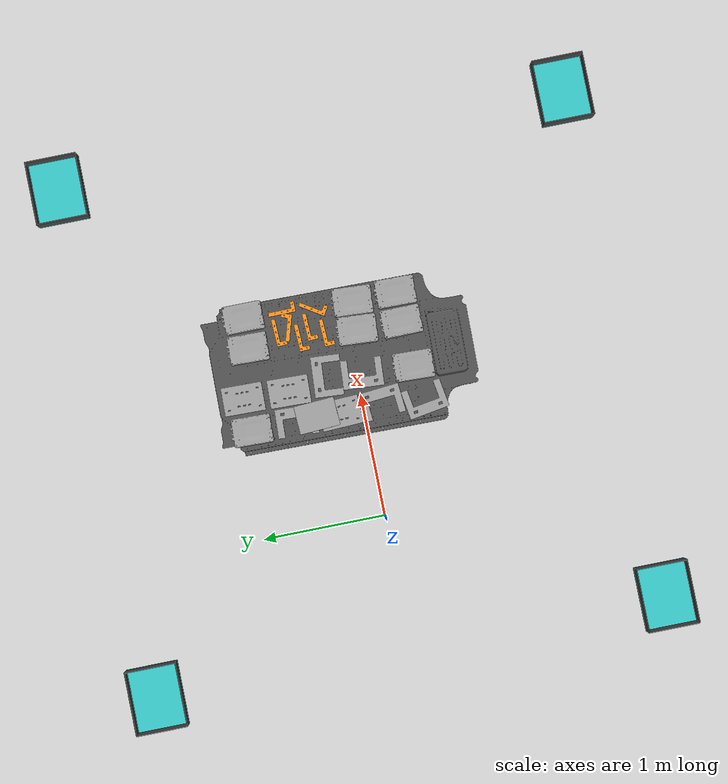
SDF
<sdf version="1.6">
 <world name="default">
  <scene><shadows>0</shadows><ambient>0.4 0.4 0.4 1</ambient><background>0.7 0.7 0.7 1</background></scene>
  <model name="ground_plane">
   <static>1</static>
   <link name="link">
    <collision name="collision">
     <geometry><plane><normal>0 0 1</normal><size>100 100</size></plane></geometry>
     <surface><friction><ode><mu>100</mu><mu2>50</mu2></ode></friction></surface>
    </collision>
    <visual name="visual">
     <cast_shadows>0</cast_shadows>
     <geometry><plane><normal>0 0 1</normal><size>100 100</size></plane></geometry>
     <material>
      <script><uri>file://media/materials/scripts/gazebo.material</uri><name>PR2/Grey3</name></script>
     </material>
    </visual>
   </link>
  </model>
  <light name="sun" type="directional">
   <pose>0 0 10 0 -0 0</pose>
   <diffuse>0.8 0.8 0.8 1</diffuse>
   <specular>0.2 0.2 0.2 1</specular>
   <attenuation>
    <range>1000</range>
    <constant>0.9</constant>
    <linear>0.01</linear>
    <quadratic>0.001</quadratic>
   </attenuation>
   <direction>-0.5 0.1 -0.9</direction>
  </light>
  <model name="tesla_battery">
   <static>1</static>
   <link name="link0">
    <collision name="collision">
     <pose>0.05 0.15 -0.05445 0 -0 0</pose>
     <geometry><box><size>1.1 1.9 0.12</size></box></geometry>
     <surface><friction><ode><mu>1</mu><mu2>1</mu2></ode></friction></surface>
    </collision>
    <visual name="visual">
     <geometry><mesh><uri>model://tesla_battery_v2/meshes/tesla_batteryv2.dae</uri></mesh></geometry>
     <material>
      <script><uri>file://media/materials/scripts/gazebo.material</uri><name>Gazebo/DarkGrey</name></script>
     </material>
    </visual>
   </link>
   <pose>1.25475 -0.007841 0.8 0 -0 0</pose>
  </model>
  <model name="tesla_battery_support">
   <static>1</static>
   <link name="link0">
    <collision name="collision"><geometry><box><size>0.7 2.8 0.5</size></box></geometry></collision>
   </link>
   <pose>1.3 0 0.25 0 -0 0</pose>
  </model>
  <model name="bin_1">
   <static>1</static>
   <link name="column_link">
    <collision name="column">
     <pose>0 0 0.3 0 -0 0</pose>
     <geometry><box><size>0.4 0.5 0.6</size></box></geometry>
     <surface><friction><ode><mu>0.6</mu><mu2>0.6</mu2></ode></friction></surface>
    </collision>
    <visual name="column">
     <pose>0 0 0.3 0 -0 0</pose>
     <geometry><cylinder><radius>0.1</radius><length>0.6</length></cylinder></geometry>
     <material>
      <script><uri>file://media/materials/scripts/gazebo.material</uri><name>PR2/Grey4</name></script>
     </material>
    </visual>
   </link>
   <joint name="column2table" type="revolute">
    <parent>column_link</parent>
    <child>table_link</child>
    <pose>0 0 0.3 0 -0 0</pose>
   </joint>
   <link name="table_link">
    <collision name="surface">
     <pose>0 0 0.6 0 -0 0</pose>
     <geometry><box><size>0.5 0.4 0.03</size></box></geometry>
     <surface><friction><ode><mu>0.6</mu><mu2>0.6</mu2></ode></friction></surface>
    </collision>
    <visual name="surface">
     <pose>0 0 0.6 0 -0 0</pose>
     <geometry><box><size>0.5 0.4 0.03</size></box></geometry>
     <material>
      <script><uri>file://media/materials/scripts/gazebo.material</uri><name>Gazebo/Turquoise</name></script>
     </material>
    </visual>
   </link>
   <joint name="table2bin" type="prismatic">
    <parent>table_link</parent>
    <child>bin_link</child>
    <pose>0 0 1 0 -0 0</pose>
    <axis>
     <xyz>0 0 1</xyz>
     <use_parent_model_frame>0</use_parent_model_frame>
     <limit><lower>-1e+16</lower><upper>1e+16</upper></limit>
     <dynamics><spring_reference>0</spring_reference><spring_stiffness>0</spring_stiffness></dynamics>
    </axis>
   </joint>
   <link name="bin_link">
    <collision name="bin">
     <pose>0 0 0.68 0 -0 0</pose>
     <geometry><mesh><uri>model://table_bin/meshes/big_bin.stl</uri></mesh></geometry>
    </collision>
    <visual name="bin">
     <pose>0 0 0.68 0 -0 0</pose>
     <geometry><mesh><uri>model://table_bin/meshes/big_bin.dae</uri></mesh></geometry>
     <material>
      <script><uri>file://media/materials/scripts/gazebo.material</uri><name>Gazebo/DarkGrey</name></script>
     </material>
    </visual>
   </link>
   <pose>-1 2 0 0 -0 0</pose>
  </model>
  <model name="bin_2">
   <static>1</static>
   <link name="column_link">
    <collision name="column">
     <pose>0 0 0.3 0 -0 0</pose>
     <geometry><box><size>0.4 0.5 0.6</size></box></geometry>
     <surface><friction><ode><mu>0.6</mu><mu2>0.6</mu2></ode></friction></surface>
    </collision>
    <visual name="column">
     <pose>0 0 0.3 0 -0 0</pose>
     <geometry><cylinder><radius>0.1</radius><length>0.6</length></cylinder></geometry>
     <material>
      <script><uri>file://media/materials/scripts/gazebo.material</uri><name>PR2/Grey4</name></script>
     </material>
    </visual>
   </link>
   <joint name="column2table" type="revolute">
    <parent>column_link</parent>
    <child>table_link</child>
    <pose>0 0 0.3 0 -0 0</pose>
   </joint>
   <link name="table_link">
    <collision name="surface">
     <pose>0 0 0.6 0 -0 0</pose>
     <geometry><box><size>0.5 0.4 0.03</size></box></geometry>
     <surface><friction><ode><mu>0.6</mu><mu2>0.6</mu2></ode></friction></surface>
    </collision>
    <visual name="surface">
     <pose>0 0 0.6 0 -0 0</pose>
     <geometry><box><size>0.5 0.4 0.03</size></box></geometry>
     <material>
      <script><uri>file://media/materials/scripts/gazebo.material</uri><name>Gazebo/Turquoise</name></script>
     </material>
    </visual>
   </link>
   <joint name="table2bin" type="prismatic">
    <parent>table_link</parent>
    <child>bin_link</child>
    <pose>0 0 1 0 -0 0</pose>
    <axis>
     <xyz>0 0 1</xyz>
     <use_parent_model_frame>0</use_parent_model_frame>
     <limit><lower>-1e+16</lower><upper>1e+16</upper></limit>
     <dynamics><spring_reference>0</spring_reference><spring_stiffness>0</spring_stiffness></dynamics>
    </axis>
   </joint>
   <link name="bin_link">
    <collision name="bin">
     <pose>0 0 0.68 0 -0 0</pose>
     <geometry><mesh><uri>model://table_bin/meshes/big_bin.stl</uri></mesh></geometry>
    </collision>
    <visual name="bin">
     <pose>0 0 0.68 0 -0 0</pose>
     <geometry><mesh><uri>model://table_bin/meshes/big_bin.dae</uri></mesh></geometry>
     <material>
      <script><uri>file://media/materials/scripts/gazebo.material</uri><name>Gazebo/DarkGrey</name></script>
     </material>
    </visual>
   </link>
   <pose>-1 -2 0 0 -0 0</pose>
  </model>
  <model name="bin_3">
   <static>1</static>
   <link name="column_link">
    <collision name="column">
     <pose>0 0 0.3 0 -0 0</pose>
     <geometry><box><size>0.4 0.5 0.6</size></box></geometry>
     <surface><friction><ode><mu>0.6</mu><mu2>0.6</mu2></ode></friction></surface>
    </collision>
    <visual name="column">
     <pose>0 0 0.3 0 -0 0</pose>
     <geometry><cylinder><radius>0.1</radius><length>0.6</length></cylinder></geometry>
     <material>
      <script><uri>file://media/materials/scripts/gazebo.material</uri><name>PR2/Grey4</name></script>
     </material>
    </visual>
   </link>
   <joint name="column2table" type="revolute">
    <parent>column_link</parent>
    <child>table_link</child>
    <pose>0 0 0.3 0 -0 0</pose>
   </joint>
   <link name="table_link">
    <collision name="surface">
     <pose>0 0 0.6 0 -0 0</pose>
     <geometry><box><size>0.5 0.4 0.03</size></box></geometry>
     <surface><friction><ode><mu>0.6</mu><mu2>0.6</mu2></ode></friction></surface>
    </collision>
    <visual name="surface">
     <pose>0 0 0.6 0 -0 0</pose>
     <geometry><box><size>0.5 0.4 0.03</size></box></geometry>
     <material>
      <script><uri>file://media/materials/scripts/gazebo.material</uri><name>Gazebo/Turquoise</name></script>
     </material>
    </visual>
   </link>
   <joint name="table2bin" type="prismatic">
    <parent>table_link</parent>
    <child>bin_link</child>
    <pose>0 0 1 0 -0 0</pose>
    <axis>
     <xyz>0 0 1</xyz>
     <use_parent_model_frame>0</use_parent_model_frame>
     <limit><lower>-1e+16</lower><upper>1e+16</upper></limit>
     <dynamics><spring_reference>0</spring_reference><spring_stiffness>0</spring_stiffness></dynamics>
    </axis>
   </joint>
   <link name="bin_link">
    <collision name="bin">
     <pose>0 0 0.68 0 -0 0</pose>
     <geometry><mesh><uri>model://table_bin/meshes/big_bin.stl</uri></mesh></geometry>
    </collision>
    <visual name="bin">
     <pose>0 0 0.68 0 -0 0</pose>
     <geometry><mesh><uri>model://table_bin/meshes/big_bin.dae</uri></mesh></geometry>
     <material>
      <script><uri>file://media/materials/scripts/gazebo.material</uri><name>Gazebo/DarkGrey</name></script>
     </material>
    </visual>
   </link>
   <pose>3 -2 0 0 -0 0</pose>
  </model>
  <model name="bin_4">
   <static>1</static>
   <link name="column_link">
    <collision name="column">
     <pose>0 0 0.3 0 -0 0</pose>
     <geometry><box><size>0.4 0.5 0.6</size></box></geometry>
     <surface><friction><ode><mu>0.6</mu><mu2>0.6</mu2></ode></friction></surface>
    </collision>
    <visual name="column">
     <pose>0 0 0.3 0 -0 0</pose>
     <geometry><cylinder><radius>0.1</radius><length>0.6</length></cylinder></geometry>
     <material>
      <script><uri>file://media/materials/scripts/gazebo.material</uri><name>PR2/Grey4</name></script>
     </material>
    </visual>
   </link>
   <joint name="column2table" type="revolute">
    <parent>column_link</parent>
    <child>table_link</child>
    <pose>0 0 0.3 0 -0 0</pose>
   </joint>
   <link name="table_link">
    <collision name="surface">
     <pose>0 0 0.6 0 -0 0</pose>
     <geometry><box><size>0.5 0.4 0.03</size></box></geometry>
     <surface><friction><ode><mu>0.6</mu><mu2>0.6</mu2></ode></friction></surface>
    </collision>
    <visual name="surface">
     <pose>0 0 0.6 0 -0 0</pose>
     <geometry><box><size>0.5 0.4 0.03</size></box></geometry>
     <material>
      <script><uri>file://media/materials/scripts/gazebo.material</uri><name>Gazebo/Turquoise</name></script>
     </material>
    </visual>
   </link>
   <joint name="table2bin" type="prismatic">
    <parent>table_link</parent>
    <child>bin_link</child>
    <pose>0 0 1 0 -0 0</pose>
    <axis>
     <xyz>0 0 1</xyz>
     <use_parent_model_frame>0</use_parent_model_frame>
     <limit><lower>-1e+16</lower><upper>1e+16</upper></limit>
     <dynamics><spring_reference>0</spring_reference><spring_stiffness>0</spring_stiffness></dynamics>
    </axis>
   </joint>
   <link name="bin_link">
    <collision name="bin">
     <pose>0 0 0.68 0 -0 0</pose>
     <geometry><mesh><uri>model://table_bin/meshes/big_bin.stl</uri></mesh></geometry>
    </collision>
    <visual name="bin">
     <pose>0 0 0.68 0 -0 0</pose>
     <geometry><mesh><uri>model://table_bin/meshes/big_bin.dae</uri></mesh></geometry>
     <material>
      <script><uri>file://media/materials/scripts/gazebo.material</uri><name>Gazebo/DarkGrey</name></script>
     </material>
    </visual>
   </link>
   <pose>3 2 0 0 -0 0</pose>
  </model>
  <model name="leaf6">
   <static>0</static>
   <link name="leaf_cell_link">
    <collision name="collision">
     <geometry><box><size>0.2228 0.3149 0.035</size></box></geometry>
     <surface><friction><ode><mu>1</mu><mu2>1</mu2></ode></friction></surface>
    </collision>
    <visual name="visual">
     <geometry><mesh><uri>model://leaf_cell/meshes/leaf_cell.dae</uri></mesh></geometry>
     <material>
      <script><uri>file://media/materials/scripts/gazebo.material</uri><name>Gazebo/Grey</name></script>
     </material>
    </visual>
    <inertial>
     <pose>0 0 0 0 0 -1.5707</pose>
     <mass>0.1</mass>
     <inertia>
      <ixx>0.000539835</ixx>
      <iyy>0.00075853</iyy>
      <izz>0.0012813</izz>
      <ixy>0</ixy>
      <ixz>0</ixz>
      <iyz>0</iyz>
     </inertia>
    </inertial>
   </link>
   <pose>1.7288 0.777601 0.823034 -0.000103 -0 -0.002788</pose>
  </model>
  <model name="leaf66">
   <static>0</static>
   <link name="leaf_cell_link">
    <collision name="collision">
     <geometry><box><size>0.2228 0.3149 0.035</size></box></geometry>
     <surface><friction><ode><mu>1</mu><mu2>1</mu2></ode></friction></surface>
    </collision>
    <visual name="visual">
     <geometry><mesh><uri>model://leaf_cell/meshes/leaf_cell.dae</uri></mesh></geometry>
     <material>
      <script><uri>file://media/materials/scripts/gazebo.material</uri><name>Gazebo/Grey</name></script>
     </material>
    </visual>
    <inertial>
     <pose>0 0 0 0 0 -1.5707</pose>
     <mass>0.1</mass>
     <inertia>
      <ixx>0.000539835</ixx>
      <iyy>0.00075853</iyy>
      <izz>0.0012813</izz>
      <ixy>0</ixy>
      <ixz>0</ixz>
      <iyz>0</iyz>
     </inertia>
    </inertial>
   </link>
   <pose>1.49055 0.784628 0.823044 0 -5.4e-05 -0.028102</pose>
  </model>
  <model name="leaf5">
   <static>0</static>
   <link name="leaf_cell_link">
    <collision name="collision">
     <geometry><box><size>0.2228 0.3149 0.035</size></box></geometry>
     <surface><friction><ode><mu>1</mu><mu2>1</mu2></ode></friction></surface>
    </collision>
    <visual name="visual">
     <geometry><mesh><uri>model://leaf_cell/meshes/leaf_cell.dae</uri></mesh></geometry>
     <material>
      <script><uri>file://media/materials/scripts/gazebo.material</uri><name>Gazebo/Grey</name></script>
     </material>
    </visual>
    <inertial>
     <pose>0 0 0 0 0 -1.5707</pose>
     <mass>0.1</mass>
     <inertia>
      <ixx>0.000539835</ixx>
      <iyy>0.00075853</iyy>
      <izz>0.0012813</izz>
      <ixy>0</ixy>
      <ixz>0</ixz>
      <iyz>0</iyz>
     </inertia>
    </inertial>
   </link>
   <pose>1.69197 -0.067635 0.82305 0 0 -0.062538</pose>
  </model>
  <model name="leaf55">
   <static>0</static>
   <link name="leaf_cell_link">
    <collision name="collision">
     <geometry><box><size>0.2228 0.3149 0.035</size></box></geometry>
     <surface><friction><ode><mu>1</mu><mu2>1</mu2></ode></friction></surface>
    </collision>
    <visual name="visual">
     <geometry><mesh><uri>model://leaf_cell/meshes/leaf_cell.dae</uri></mesh></geometry>
     <material>
      <script><uri>file://media/materials/scripts/gazebo.material</uri><name>Gazebo/Grey</name></script>
     </material>
    </visual>
    <inertial>
     <pose>0 0 0 0 0 -1.5707</pose>
     <mass>0.1</mass>
     <inertia>
      <ixx>0.000539835</ixx>
      <iyy>0.00075853</iyy>
      <izz>0.0012813</izz>
      <ixy>0</ixy>
      <ixz>0</ixz>
      <iyz>0</iyz>
     </inertia>
    </inertial>
   </link>
   <pose>1.46888 -0.060821 0.823044 0 5.4e-05 -0.06337</pose>
  </model>
  <model name="leaf4">
   <static>0</static>
   <link name="leaf_cell_link">
    <collision name="collision">
     <geometry><box><size>0.2228 0.3149 0.035</size></box></geometry>
     <surface><friction><ode><mu>1</mu><mu2>1</mu2></ode></friction></surface>
    </collision>
    <visual name="visual">
     <geometry><mesh><uri>model://leaf_cell/meshes/leaf_cell.dae</uri></mesh></geometry>
     <material>
      <script><uri>file://media/materials/scripts/gazebo.material</uri><name>Gazebo/Grey</name></script>
     </material>
    </visual>
    <inertial>
     <pose>0 0 0 0 0 -1.5707</pose>
     <mass>0.1</mass>
     <inertia>
      <ixx>0.000539835</ixx>
      <iyy>0.00075853</iyy>
      <izz>0.0012813</izz>
      <ixy>0</ixy>
      <ixz>0</ixz>
      <iyz>0</iyz>
     </inertia>
    </inertial>
   </link>
   <pose>1.69527 -0.405348 0.823038 -7.8e-05 0 -0.015455</pose>
  </model>
  <model name="leaf44">
   <static>0</static>
   <link name="leaf_cell_link">
    <collision name="collision">
     <geometry><box><size>0.2228 0.3149 0.035</size></box></geometry>
     <surface><friction><ode><mu>1</mu><mu2>1</mu2></ode></friction></surface>
    </collision>
    <visual name="visual">
     <geometry><mesh><uri>model://leaf_cell/meshes/leaf_cell.dae</uri></mesh></geometry>
     <material>
      <script><uri>file://media/materials/scripts/gazebo.material</uri><name>Gazebo/Grey</name></script>
     </material>
    </visual>
    <inertial>
     <pose>0 0 0 0 0 -1.5707</pose>
     <mass>0.1</mass>
     <inertia>
      <ixx>0.000539835</ixx>
      <iyy>0.00075853</iyy>
      <izz>0.0012813</izz>
      <ixy>0</ixy>
      <ixz>0</ixz>
      <iyz>0</iyz>
     </inertia>
    </inertial>
   </link>
   <pose>1.46388 -0.405727 0.823044 0 -5.4e-05 0.008462</pose>
  </model>
  <model name="leaf1">
   <static>0</static>
   <link name="leaf_cell_link">
    <collision name="collision">
     <geometry><box><size>0.2228 0.3149 0.035</size></box></geometry>
     <surface><friction><ode><mu>1</mu><mu2>1</mu2></ode></friction></surface>
    </collision>
    <visual name="visual">
     <geometry><mesh><uri>model://leaf_cell/meshes/leaf_cell.dae</uri></mesh></geometry>
     <material>
      <script><uri>file://media/materials/scripts/gazebo.material</uri><name>Gazebo/Grey</name></script>
     </material>
    </visual>
    <inertial>
     <pose>0 0 0 0 0 -1.5707</pose>
     <mass>0.1</mass>
     <inertia>
      <ixx>0.000539835</ixx>
      <iyy>0.00075853</iyy>
      <izz>0.0012813</izz>
      <ixy>0</ixy>
      <ixz>0</ixz>
      <iyz>0</iyz>
     </inertia>
    </inertial>
   </link>
   <pose>0.867996 0.87712 0.823044 -0 5.4e-05 -0.025218</pose>
  </model>
  <model name="plate_a_1">
   <static>0</static>
   <link name="link0">
    <collision name="collision">
     <geometry><mesh><uri>model://plate_a/meshes/plate_a_centroid.stl</uri></mesh></geometry>
     <surface><friction><ode><mu>0.99</mu><mu2>0.99</mu2></ode></friction></surface>
    </collision>
    <visual name="visual">
     <geometry><mesh><uri>model://plate_a/meshes/plate_a_centroid.dae</uri></mesh></geometry>
     <material>
      <script><uri>file://media/materials/scripts/gazebo.material</uri><name>PR2/Grey1</name></script>
     </material>
    </visual>
    <inertial>
     <mass>0.1</mass>
     <inertia>
      <ixx>0.00082718</ixx>
      <ixy>0</ixy>
      <ixz>0</ixz>
      <iyy>0.00043403</iyy>
      <iyz>0</iyz>
      <izz>0.00125955</izz>
     </inertia>
    </inertial>
   </link>
   <pose>0.924154 0.522618 0.810545 -5.5e-05 -2.1e-05 -0.038145</pose>
  </model>
  <model name="leaf2">
   <static>0</static>
   <link name="leaf_cell_link">
    <collision name="collision">
     <geometry><box><size>0.2228 0.3149 0.035</size></box></geometry>
     <surface><friction><ode><mu>1</mu><mu2>1</mu2></ode></friction></surface>
    </collision>
    <visual name="visual">
     <geometry><mesh><uri>model://leaf_cell/meshes/leaf_cell.dae</uri></mesh></geometry>
     <material>
      <script><uri>file://media/materials/scripts/gazebo.material</uri><name>Gazebo/Grey</name></script>
     </material>
    </visual>
    <inertial>
     <pose>0 0 0 0 0 -1.5707</pose>
     <mass>0.1</mass>
     <inertia>
      <ixx>0.000539835</ixx>
      <iyy>0.00075853</iyy>
      <izz>0.0012813</izz>
      <ixy>0</ixy>
      <ixz>0</ixz>
      <iyz>0</iyz>
     </inertia>
    </inertial>
   </link>
   <pose>1.1147 -0.43076 0.823044 0 -5.4e-05 -0.033504</pose>
  </model>
  <model name="plate_a_2">
   <static>0</static>
   <link name="link0">
    <collision name="collision">
     <geometry><mesh><uri>model://plate_a/meshes/plate_a_centroid.stl</uri></mesh></geometry>
     <surface><friction><ode><mu>0.99</mu><mu2>0.99</mu2></ode></friction></surface>
    </collision>
    <visual name="visual">
     <geometry><mesh><uri>model://plate_a/meshes/plate_a_centroid.dae</uri></mesh></geometry>
     <material>
      <script><uri>file://media/materials/scripts/gazebo.material</uri><name>PR2/Grey1</name></script>
     </material>
    </visual>
    <inertial>
     <mass>0.1</mass>
     <inertia>
      <ixx>0.00082718</ixx>
      <ixy>0</ixy>
      <ixz>0</ixz>
      <iyy>0.00043403</iyy>
      <iyz>0</iyz>
      <izz>0.00125955</izz>
     </inertia>
    </inertial>
   </link>
   <pose>0.936552 -0.138496 0.81055 0 -0 0.087935</pose>
  </model>
  <gravity>0 0 -9.8</gravity>
  <magnetic_field>6e-06 2.3e-05 -4.2e-05</magnetic_field>
  <atmosphere type="adiabatic"/>
  <physics name="default_physics" default="0" type="ode">
   <max_step_size>0.001</max_step_size>
   <real_time_factor>1</real_time_factor>
   <real_time_update_rate>1000</real_time_update_rate>
  </physics>
  <spherical_coordinates>
   <surface_model>EARTH_WGS84</surface_model>
   <latitude_deg>0</latitude_deg>
   <longitude_deg>0</longitude_deg>
   <elevation>0</elevation>
   <heading_deg>0</heading_deg>
  </spherical_coordinates>
  <model name="plate_a_1_clone">
   <static>0</static>
   <link name="link0">
    <collision name="collision">
     <geometry><mesh><uri>model://plate_a/meshes/plate_a_centroid.stl</uri></mesh></geometry>
     <surface><friction><ode><mu>0.99</mu><mu2>0.99</mu2></ode></friction></surface>
    </collision>
    <visual name="visual">
     <geometry><mesh><uri>model://plate_a/meshes/plate_a_centroid.dae</uri></mesh></geometry>
     <material>
      <script><uri>file://media/materials/scripts/gazebo.material</uri><name>PR2/Grey1</name></script>
     </material>
    </visual>
    <inertial>
     <mass>0.1</mass>
     <inertia>
      <ixx>0.00082718</ixx>
      <ixy>0</ixy>
      <ixz>0</ixz>
      <iyy>0.00043403</iyy>
      <iyz>0</iyz>
      <izz>0.00125955</izz>
     </inertia>
    </inertial>
   </link>
   <pose>1.08163 -0.034157 0.810545 6.2e-05 -6e-06 3.08024</pose>
  </model>
  <model name="plate_a_1_clone_clone">
   <static>0</static>
   <link name="link0">
    <collision name="collision">
     <geometry><mesh><uri>model://plate_a/meshes/plate_a_centroid.stl</uri></mesh></geometry>
     <surface><friction><ode><mu>0.99</mu><mu2>0.99</mu2></ode></friction></surface>
    </collision>
    <visual name="visual">
     <geometry><mesh><uri>model://plate_a/meshes/plate_a_centroid.dae</uri></mesh></geometry>
     <material>
      <script><uri>file://media/materials/scripts/gazebo.material</uri><name>PR2/Grey1</name></script>
     </material>
    </visual>
    <inertial>
     <mass>0.1</mass>
     <inertia>
      <ixx>0.00082718</ixx>
      <ixy>0</ixy>
      <ixz>0</ixz>
      <iyy>0.00043403</iyy>
      <iyz>0</iyz>
      <izz>0.00125955</izz>
     </inertia>
    </inertial>
   </link>
   <pose>0.792047 -0.478694 0.810547 -3.8e-05 -1.7e-05 -2.98281</pose>
  </model>
  <model name="plate_a_2_clone">
   <static>0</static>
   <link name="link0">
    <collision name="collision">
     <geometry><mesh><uri>model://plate_a/meshes/plate_a_centroid.stl</uri></mesh></geometry>
     <surface><friction><ode><mu>0.99</mu><mu2>0.99</mu2></ode></friction></surface>
    </collision>
    <visual name="visual">
     <geometry><mesh><uri>model://plate_a/meshes/plate_a_centroid.dae</uri></mesh></geometry>
     <material>
      <script><uri>file://media/materials/scripts/gazebo.material</uri><name>PR2/Grey1</name></script>
     </material>
    </visual>
    <inertial>
     <mass>0.1</mass>
     <inertia>
      <ixx>0.00082718</ixx>
      <ixy>0</ixy>
      <ixz>0</ixz>
      <iyy>0.00043403</iyy>
      <iyz>0</iyz>
      <izz>0.00125955</izz>
     </inertia>
    </inertial>
   </link>
   <pose>1.16957 0.283044 0.810545 6.2e-05 -6e-06 1.50497</pose>
  </model>
  <audio><device>default</device></audio>
  <model name="plate_b_clone">
   <static>0</static>
   <link name="link0">
    <collision name="collision">
     <geometry><mesh><uri>model://plate_b/meshes/plate_b.stl</uri></mesh></geometry>
     <surface><friction><ode><mu>0.99</mu><mu2>0.99</mu2></ode></friction></surface>
    </collision>
    <visual name="visual">
     <geometry><mesh><uri>model://plate_b/meshes/plate_b.stl</uri></mesh></geometry>
     <material>
      <script><uri>file://media/materials/scripts/gazebo.material</uri><name>Gazebo/Grey</name></script>
     </material>
    </visual>
    <inertial>
     <mass>0.1</mass>
     <inertia>
      <ixx>0.000539835</ixx>
      <iyy>0.00075853</iyy>
      <izz>0.0012813</izz>
      <ixy>0</ixy>
      <ixz>0</ixz>
      <iyz>0</iyz>
     </inertia>
    </inertial>
   </link>
   <pose>1.10634 0.538756 0.81055 1e-06 1e-06 -0.030424</pose>
  </model>
  <model name="plate_b_clone_clone">
   <static>0</static>
   <link name="link0">
    <collision name="collision">
     <geometry><mesh><uri>model://plate_b/meshes/plate_b.stl</uri></mesh></geometry>
     <surface><friction><ode><mu>0.99</mu><mu2>0.99</mu2></ode></friction></surface>
    </collision>
    <visual name="visual">
     <geometry><mesh><uri>model://plate_b/meshes/plate_b.stl</uri></mesh></geometry>
     <material>
      <script><uri>file://media/materials/scripts/gazebo.material</uri><name>Gazebo/Grey</name></script>
     </material>
    </visual>
    <inertial>
     <mass>0.1</mass>
     <inertia>
      <ixx>0.000539835</ixx>
      <iyy>0.00075853</iyy>
      <izz>0.0012813</izz>
      <ixy>0</ixy>
      <ixz>0</ixz>
      <iyz>0</iyz>
     </inertia>
    </inertial>
   </link>
   <pose>1.11807 0.893421 0.81055 1e-06 1e-06 -0.019704</pose>
  </model>
  <model name="plate_b_0">
   <static>0</static>
   <link name="link0">
    <collision name="collision">
     <geometry><box><size>0.22 0.315 0.015</size></box></geometry>
     <surface><friction><ode><mu>0.99</mu><mu2>0.99</mu2></ode></friction></surface>
    </collision>
    <visual name="visual">
     <geometry><mesh><uri>model://plate_b/meshes/plate_b.stl</uri></mesh></geometry>
     <material>
      <script><uri>file://media/materials/scripts/gazebo.material</uri><name>Gazebo/Grey</name></script>
     </material>
    </visual>
    <inertial>
     <mass>0.5</mass>
     <inertia>
      <ixx>0.0041438</ixx>
      <ixy>0</ixy>
      <ixz>0</ixz>
      <iyy>0.002026</iyy>
      <iyz>0</iyz>
      <izz>0.006151</izz>
     </inertia>
    </inertial>
   </link>
   <pose>0.866969 0.185796 0.81305 0 -0 0.040614</pose>
  </model>
  <model name="bracket_0">
   <static>0</static>
   <link name="link0">
    <collision name="collision">
     <pose>-0.005 0 0.005 0 -0 0</pose>
     <geometry><cylinder><radius>0.04</radius><length>0.01</length></cylinder></geometry>
     <surface><friction><ode><mu>0.99</mu><mu2>0.99</mu2></ode></friction></surface>
    </collision>
    <visual name="visual">
     <geometry><mesh><uri>model://bracket/meshes/bracket_modified.dae</uri></mesh></geometry>
     <material>
      <script><uri>file://media/materials/scripts/gazebo.material</uri><name>Gazebo/Orange</name></script>
     </material>
    </visual>
    <inertial>
     <pose>-0.005 0 0.005 0 -0 0</pose>
     <mass>0.1</mass>
     <inertia>
      <ixx>3.15e-05</ixx>
      <ixy>0</ixy>
      <ixz>0</ixz>
      <iyy>3.15e-05</iyy>
      <iyz>0</iyz>
      <izz>6.13e-05</izz>
     </inertia>
    </inertial>
   </link>
   <pose>1.71347 0.478338 0.805564 -0.00018 0.00034 1.57882</pose>
  </model>
  <model name="bracket_0_clone">
   <static>0</static>
   <link name="link0">
    <collision name="collision">
     <pose>-0.005 0 0.005 0 -0 0</pose>
     <geometry><cylinder><radius>0.04</radius><length>0.01</length></cylinder></geometry>
     <surface><friction><ode><mu>0.99</mu><mu2>0.99</mu2></ode></friction></surface>
    </collision>
    <visual name="visual">
     <geometry><mesh><uri>model://bracket/meshes/bracket_modified.dae</uri></mesh></geometry>
     <material>
      <script><uri>file://media/materials/scripts/gazebo.material</uri><name>Gazebo/Orange</name></script>
     </material>
    </visual>
    <inertial>
     <pose>-0.005 0 0.005 0 -0 0</pose>
     <mass>0.1</mass>
     <inertia>
      <ixx>3.15e-05</ixx>
      <ixy>0</ixy>
      <ixz>0</ixz>
      <iyy>3.15e-05</iyy>
      <iyz>0</iyz>
      <izz>6.13e-05</izz>
     </inertia>
    </inertial>
   </link>
   <pose>1.69344 0.246253 0.805556 0.000383 -3.5e-05 1.00293</pose>
  </model>
  <model name="bracket_0_clone_0">
   <static>0</static>
   <link name="link0">
    <collision name="collision">
     <pose>-0.005 0 0.005 0 -0 0</pose>
     <geometry><cylinder><radius>0.04</radius><length>0.01</length></cylinder></geometry>
     <surface><friction><ode><mu>0.99</mu><mu2>0.99</mu2></ode></friction></surface>
    </collision>
    <visual name="visual">
     <geometry><mesh><uri>model://bracket/meshes/bracket_modified.dae</uri></mesh></geometry>
     <material>
      <script><uri>file://media/materials/scripts/gazebo.material</uri><name>Gazebo/Orange</name></script>
     </material>
    </visual>
    <inertial>
     <pose>-0.005 0 0.005 0 -0 0</pose>
     <mass>0.1</mass>
     <inertia>
      <ixx>3.15e-05</ixx>
      <ixy>0</ixy>
      <ixz>0</ixz>
      <iyy>3.15e-05</iyy>
      <iyz>0</iyz>
      <izz>6.13e-05</izz>
     </inertia>
    </inertial>
   </link>
   <pose>1.5684 0.306625 0.805557 -0.000111 -0.000107 0.043498</pose>
  </model>
  <model name="bracket_0_clone_1">
   <static>0</static>
   <link name="link0">
    <collision name="collision">
     <pose>-0.005 0 0.005 0 -0 0</pose>
     <geometry><cylinder><radius>0.04</radius><length>0.01</length></cylinder></geometry>
     <surface><friction><ode><mu>0.99</mu><mu2>0.99</mu2></ode></friction></surface>
    </collision>
    <visual name="visual">
     <geometry><mesh><uri>model://bracket/meshes/bracket_modified.dae</uri></mesh></geometry>
     <material>
      <script><uri>file://media/materials/scripts/gazebo.material</uri><name>Gazebo/Orange</name></script>
     </material>
    </visual>
    <inertial>
     <pose>-0.005 0 0.005 0 -0 0</pose>
     <mass>0.1</mass>
     <inertia>
      <ixx>3.15e-05</ixx>
      <ixy>0</ixy>
      <ixz>0</ixz>
      <iyy>3.15e-05</iyy>
      <iyz>0</iyz>
      <izz>6.13e-05</izz>
     </inertia>
    </inertial>
   </link>
   <pose>1.57142 0.547861 0.805558 -0.000136 -0.000124 0.04356</pose>
  </model>
  <model name="bracket_0_clone_2">
   <static>0</static>
   <link name="link0">
    <collision name="collision">
     <pose>-0.005 0 0.005 0 -0 0</pose>
     <geometry><cylinder><radius>0.04</radius><length>0.01</length></cylinder></geometry>
     <surface><friction><ode><mu>0.99</mu><mu2>0.99</mu2></ode></friction></surface>
    </collision>
    <visual name="visual">
     <geometry><mesh><uri>model://bracket/meshes/bracket_modified.dae</uri></mesh></geometry>
     <material>
      <script><uri>file://media/materials/scripts/gazebo.material</uri><name>Gazebo/Orange</name></script>
     </material>
    </visual>
    <inertial>
     <pose>-0.005 0 0.005 0 -0 0</pose>
     <mass>0.1</mass>
     <inertia>
      <ixx>3.15e-05</ixx>
      <ixy>0</ixy>
      <ixz>0</ixz>
      <iyy>3.15e-05</iyy>
      <iyz>0</iyz>
      <izz>6.13e-05</izz>
     </inertia>
    </inertial>
   </link>
   <pose>1.49998 0.383995 0.805557 -0.000115 -0.0001 0.043534</pose>
  </model>
  <model name="bracket_0_clone_3">
   <static>0</static>
   <link name="link0">
    <collision name="collision">
     <pose>-0.005 0 0.005 0 -0 0</pose>
     <geometry><cylinder><radius>0.04</radius><length>0.01</length></cylinder></geometry>
     <surface><friction><ode><mu>0.99</mu><mu2>0.99</mu2></ode></friction></surface>
    </collision>
    <visual name="visual">
     <geometry><mesh><uri>model://bracket/meshes/bracket_modified.dae</uri></mesh></geometry>
     <material>
      <script><uri>file://media/materials/scripts/gazebo.material</uri><name>Gazebo/Orange</name></script>
     </material>
    </visual>
    <inertial>
     <pose>-0.005 0 0.005 0 -0 0</pose>
     <mass>0.1</mass>
     <inertia>
      <ixx>3.15e-05</ixx>
      <ixy>0</ixy>
      <ixz>0</ixz>
      <iyy>3.15e-05</iyy>
      <iyz>0</iyz>
      <izz>6.13e-05</izz>
     </inertia>
    </inertial>
   </link>
   <pose>1.5002 0.189195 0.805558 -0.000129 -0.000123 0.043529</pose>
  </model>
  <model name="bracket_0_clone_4">
   <static>0</static>
   <link name="link0">
    <collision name="collision">
     <pose>-0.005 0 0.005 0 -0 0</pose>
     <geometry><cylinder><radius>0.04</radius><length>0.01</length></cylinder></geometry>
     <surface><friction><ode><mu>0.99</mu><mu2>0.99</mu2></ode></friction></surface>
    </collision>
    <visual name="visual">
     <geometry><mesh><uri>model://bracket/meshes/bracket_modified.dae</uri></mesh></geometry>
     <material>
      <script><uri>file://media/materials/scripts/gazebo.material</uri><name>Gazebo/Orange</name></script>
     </material>
    </visual>
    <inertial>
     <pose>-0.005 0 0.005 0 -0 0</pose>
     <mass>0.1</mass>
     <inertia>
      <ixx>3.15e-05</ixx>
      <ixy>0</ixy>
      <ixz>0</ixz>
      <iyy>3.15e-05</iyy>
      <iyz>0</iyz>
      <izz>6.13e-05</izz>
     </inertia>
    </inertial>
   </link>
   <pose>1.58053 0.44752 0.805567 -7.8e-05 -0.000377 2.85479</pose>
  </model>
  <model name="plate_b">
   <static>0</static>
   <link name="link0">
    <collision name="collision">
     <geometry><box><size>0.22 0.315 0.01</size></box></geometry>
     <surface><friction><ode><mu>0.99</mu><mu2>0.99</mu2></ode></friction></surface>
    </collision>
    <visual name="visual">
     <geometry><box><size>0.22 0.315 0.015</size></box></geometry>
     <material>
      <script><uri>file://media/materials/scripts/gazebo.material</uri><name>Gazebo/Grey</name></script>
     </material>
    </visual>
    <inertial>
     <mass>0.1</mass>
     <inertia>
      <ixx>0.0008288</ixx>
      <ixy>0</ixy>
      <ixz>0</ixz>
      <iyy>0.0004052</iyy>
      <iyz>0</iyz>
      <izz>0.0012302</izz>
     </inertia>
    </inertial>
   </link>
   <pose>0.882134 0.365658 0.824919 -0.027131 0.000834 0.055627</pose>
  </model>
 </world>
</sdf>
